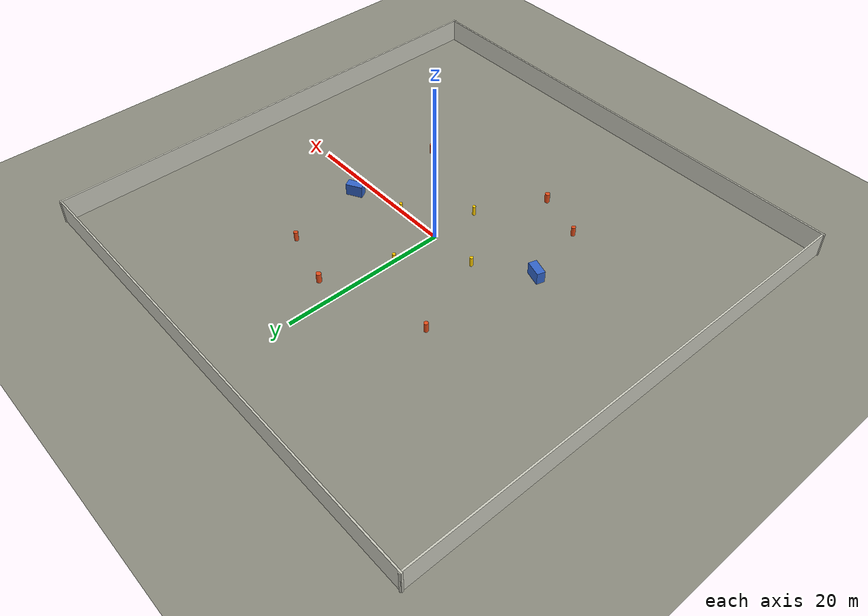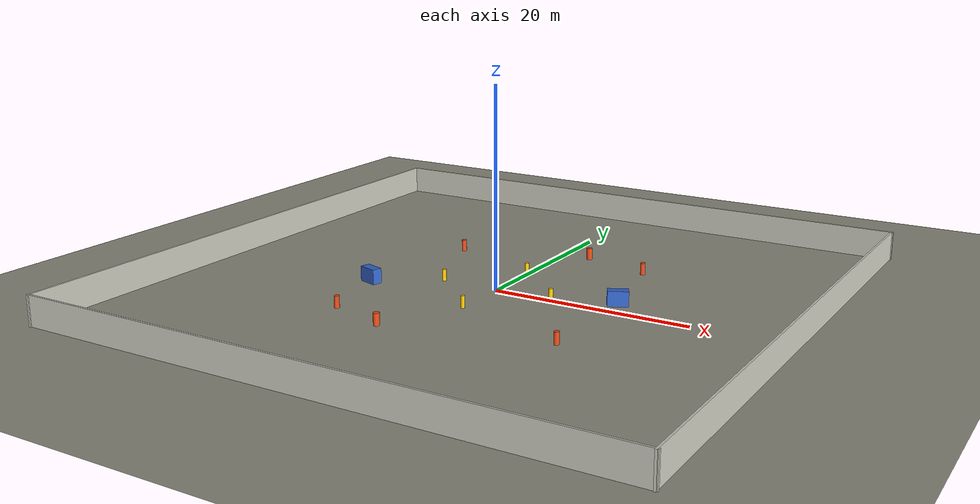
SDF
<?xml version="1.0" ?>

<sdf version='1.8'>
  <world name='open_field'>

    <!-- REQUIRED IGNITION SYSTEM PLUGINS -->
    <plugin filename="gz-sim-physics-system"
            name="gz::sim::systems::Physics"/>
    <plugin filename="gz-sim-user-commands-system"
            name="gz::sim::systems::UserCommands"/>
    <plugin filename="gz-sim-scene-broadcaster-system"
            name="gz::sim::systems::SceneBroadcaster"/>
    <!-- Sensors system required for lidar / IMU to publish -->
    <plugin filename="gz-sim-sensors-system"
            name="gz::sim::systems::Sensors">
      <render_engine>ogre2</render_engine>
    </plugin>
    <plugin filename="gz-sim-imu-system"
            name="gz::sim::systems::Imu"/>

    <!-- LIGHTING  (no cast_shadows → GPU-light)-->
    <light name='sun' type='directional'>
      <cast_shadows>0</cast_shadows>
      <pose>0 0 20 0 -0 0</pose>
      <diffuse>0.9 0.9 0.9 1</diffuse>
      <specular>0.3 0.3 0.3 1</specular>
      <attenuation>
        <range>1000</range>
        <constant>0.9</constant>
        <linear>0.01</linear>
        <quadratic>0.001</quadratic>
      </attenuation>
      <direction>-0.3 0.1 -0.9</direction>
    </light>

    <!-- PHYSICS  (1 kHz, RTF=1) -->
    <physics name='default_physics' default='0' type='ode'>
      <max_step_size>0.001</max_step_size>
      <real_time_factor>1</real_time_factor>
      <real_time_update_rate>1000</real_time_update_rate>
    </physics>

    <!-- GROUND  — 60 × 60 m paved surface -->
    <model name='ground_plane'>
      <static>1</static>
      <link name='link'>
        <collision name='collision'>
          <geometry>
            <plane>
              <normal>0 0 1</normal>
              <size>60 60</size>
            </plane>
          </geometry>
          <surface>
            <friction>
              <ode>
                <mu>100</mu>
                <mu2>50</mu2>
              </ode>
            </friction>
          </surface>
        </collision>
        <visual name='visual'>
          <cast_shadows>0</cast_shadows>
          <geometry>
            <plane>
              <normal>0 0 1</normal>
              <size>60 60</size>
            </plane>
          </geometry>
          <material>
            <ambient>0.55 0.55 0.50 1</ambient>
            <diffuse>0.55 0.55 0.50 1</diffuse>
            <specular>0.1 0.1 0.1 1</specular>
          </material>
        </visual>
      </link>
    </model>

    <model name='perimeter_walls'>
      <static>true</static>
      <pose>0 0 0 0 0 0</pose>

      <!-- South wall  y = -30 -->
      <link name='wall_south'>
        <pose>0 -30 1.5 0 0 0</pose>
        <collision name='col'>
          <geometry><box><size>60.4 0.2 3.0</size></box></geometry>
        </collision>
        <visual name='vis'>
          <geometry><box><size>60.4 0.2 3.0</size></box></geometry>
          <material><ambient>0.8 0.8 0.75 1</ambient><diffuse>0.8 0.8 0.75 1</diffuse></material>
        </visual>
      </link>

      <!-- North wall  y = +30 -->
      <link name='wall_north'>
        <pose>0 30 1.5 0 0 0</pose>
        <collision name='col'>
          <geometry><box><size>60.4 0.2 3.0</size></box></geometry>
        </collision>
        <visual name='vis'>
          <geometry><box><size>60.4 0.2 3.0</size></box></geometry>
          <material><ambient>0.8 0.8 0.75 1</ambient><diffuse>0.8 0.8 0.75 1</diffuse></material>
        </visual>
      </link>

      <!-- West wall  x = -30 -->
      <link name='wall_west'>
        <pose>-30 0 1.5 0 0 0</pose>
        <collision name='col'>
          <geometry><box><size>0.2 60.4 3.0</size></box></geometry>
        </collision>
        <visual name='vis'>
          <geometry><box><size>0.2 60.4 3.0</size></box></geometry>
          <material><ambient>0.8 0.8 0.75 1</ambient><diffuse>0.8 0.8 0.75 1</diffuse></material>
        </visual>
      </link>

      <!-- East wall  x = +30 -->
      <link name='wall_east'>
        <pose>30 0 1.5 0 0 0</pose>
        <collision name='col'>
          <geometry><box><size>0.2 60.4 3.0</size></box></geometry>
        </collision>
        <visual name='vis'>
          <geometry><box><size>0.2 60.4 3.0</size></box></geometry>
          <material><ambient>0.8 0.8 0.75 1</ambient><diffuse>0.8 0.8 0.75 1</diffuse></material>
        </visual>
      </link>
    </model>

    <!-- INNER RING 4 bollards at ±5-6 m -->
    <!-- North 6 m -->
    <model name='inner_north'>
      <static>true</static>
      <pose>0 6 0.6 0 0 0</pose>
      <link name='link'>
        <collision name='col'><geometry><cylinder><radius>0.2</radius><length>1.2</length></cylinder></geometry></collision>
        <visual name='vis'>
          <geometry><cylinder><radius>0.2</radius><length>1.2</length></cylinder></geometry>
          <material><ambient>1.0 0.8 0.0 1</ambient><diffuse>1.0 0.8 0.0 1</diffuse></material>
        </visual>
      </link>
    </model>

    <!-- South 6 m -->
    <model name='inner_south'>
      <static>true</static>
      <pose>0 -6 0.6 0 0 0</pose>
      <link name='link'>
        <collision name='col'><geometry><cylinder><radius>0.2</radius><length>1.2</length></cylinder></geometry></collision>
        <visual name='vis'>
          <geometry><cylinder><radius>0.2</radius><length>1.2</length></cylinder></geometry>
          <material><ambient>1.0 0.8 0.0 1</ambient><diffuse>1.0 0.8 0.0 1</diffuse></material>
        </visual>
      </link>
    </model>

    <!-- East 6 m -->
    <model name='inner_east'>
      <static>true</static>
      <pose>6 0 0.6 0 0 0</pose>
      <link name='link'>
        <collision name='col'><geometry><cylinder><radius>0.2</radius><length>1.2</length></cylinder></geometry></collision>
        <visual name='vis'>
          <geometry><cylinder><radius>0.2</radius><length>1.2</length></cylinder></geometry>
          <material><ambient>1.0 0.8 0.0 1</ambient><diffuse>1.0 0.8 0.0 1</diffuse></material>
        </visual>
      </link>
    </model>

    <!-- West 6 m -->
    <model name='inner_west'>
      <static>true</static>
      <pose>-6 0 0.6 0 0 0</pose>
      <link name='link'>
        <collision name='col'><geometry><cylinder><radius>0.2</radius><length>1.2</length></cylinder></geometry></collision>
        <visual name='vis'>
          <geometry><cylinder><radius>0.2</radius><length>1.2</length></cylinder></geometry>
          <material><ambient>1.0 0.8 0.0 1</ambient><diffuse>1.0 0.8 0.0 1</diffuse></material>
        </visual>
      </link>
    </model>

    <!-- OUTER RING 4 bollards at ±12-16 m -->
    <model name='bollard_a'>
      <static>true</static>
      <pose>10 12 0.6 0 0 0</pose>
      <link name='link'>
        <collision name='col'><geometry><cylinder><radius>0.25</radius><length>1.2</length></cylinder></geometry></collision>
        <visual name='vis'>
          <geometry><cylinder><radius>0.25</radius><length>1.2</length></cylinder></geometry>
          <material><ambient>0.9 0.3 0.1 1</ambient><diffuse>0.9 0.3 0.1 1</diffuse></material>
        </visual>
      </link>
    </model>

    <!-- Bollard B: NW — moved to 14 m -->
    <model name='bollard_b'>
      <static>true</static>
      <pose>-10 10 0.6 0 0 0</pose>
      <link name='link'>
        <collision name='col'><geometry><cylinder><radius>0.25</radius><length>1.2</length></cylinder></geometry></collision>
        <visual name='vis'>
          <geometry><cylinder><radius>0.25</radius><length>1.2</length></cylinder></geometry>
          <material><ambient>0.9 0.3 0.1 1</ambient><diffuse>0.9 0.3 0.1 1</diffuse></material>
        </visual>
      </link>
    </model>

    <!-- Bollard C: SE ~17.2 m — within range ✓ -->
    <model name='bollard_c'>
      <static>true</static>
      <pose>12 -10 0.6 0 0 0</pose>
      <link name='link'>
        <collision name='col'><geometry><cylinder><radius>0.25</radius><length>1.2</length></cylinder></geometry></collision>
        <visual name='vis'>
          <geometry><cylinder><radius>0.25</radius><length>1.2</length></cylinder></geometry>
          <material><ambient>0.9 0.3 0.1 1</ambient><diffuse>0.9 0.3 0.1 1</diffuse></material>
        </visual>
      </link>
    </model>

    <!-- Bollard D: SW ~17.2 m — within range ✓ -->
    <model name='bollard_d'>
      <static>true</static>
      <pose>-10 -12 0.6 0 0 0</pose>
      <link name='link'>
        <collision name='col'><geometry><cylinder><radius>0.25</radius><length>1.2</length></cylinder></geometry></collision>
        <visual name='vis'>
          <geometry><cylinder><radius>0.25</radius><length>1.2</length></cylinder></geometry>
          <material><ambient>0.9 0.3 0.1 1</ambient><diffuse>0.9 0.3 0.1 1</diffuse></material>
        </visual>
      </link>
    </model>

    <!-- Box E: moved to 12 m east (was 22 m — outside lidar) -->
    <model name='box_e'>
      <static>true</static>
      <pose>12 2 0.75 0 0 0.5</pose>
      <link name='link'>
        <collision name='col'><geometry><box><size>2.0 1.0 1.5</size></box></geometry></collision>
        <visual name='vis'>
          <geometry><box><size>2.0 1.0 1.5</size></box></geometry>
          <material><ambient>0.2 0.4 0.8 1</ambient><diffuse>0.2 0.4 0.8 1</diffuse></material>
        </visual>
      </link>
    </model>

    <!-- Box F: moved to 13 m west (was 20 m — outside lidar) -->
    <model name='box_f'>
      <static>true</static>
      <pose>-12 -4 0.75 0 0 -0.3</pose>
      <link name='link'>
        <collision name='col'><geometry><box><size>2.0 1.0 1.5</size></box></geometry></collision>
        <visual name='vis'>
          <geometry><box><size>2.0 1.0 1.5</size></box></geometry>
          <material><ambient>0.2 0.4 0.8 1</ambient><diffuse>0.2 0.4 0.8 1</diffuse></material>
        </visual>
      </link>
    </model>

    <!-- Bollard G: moved to 14 m north (was 22 m — outside lidar) -->
    <model name='bollard_g'>
      <static>true</static>
      <pose>3 14 0.6 0 0 0</pose>
      <link name='link'>
        <collision name='col'><geometry><cylinder><radius>0.3</radius><length>1.2</length></cylinder></geometry></collision>
        <visual name='vis'>
          <geometry><cylinder><radius>0.3</radius><length>1.2</length></cylinder></geometry>
          <material><ambient>0.9 0.3 0.1 1</ambient><diffuse>0.9 0.3 0.1 1</diffuse></material>
        </visual>
      </link>
    </model>

    <!-- Bollard H: moved to 14 m south (was 22 m — outside lidar) -->
    <model name='bollard_h'>
      <static>true</static>
      <pose>-4 -14 0.6 0 0 0</pose>
      <link name='link'>
        <collision name='col'><geometry><cylinder><radius>0.3</radius><length>1.2</length></cylinder></geometry></collision>
        <visual name='vis'>
          <geometry><cylinder><radius>0.3</radius><length>1.2</length></cylinder></geometry>
          <material><ambient>0.9 0.3 0.1 1</ambient><diffuse>0.9 0.3 0.1 1</diffuse></material>
        </visual>
      </link>
    </model>

    <!-- GUI CAMERA  — top-down view of the full 60×60 m field -->
    <gui fullscreen="0">
      <plugin filename="GzScene3D" name="3D View">
        <gz-gui>
          <title>3D View</title>
          <property type="bool" key="showTitleBar">false</property>
          <property type="string" key="state">docked</property>
        </gz-gui>
        <engine>ogre2</engine>
        <scene>scene</scene>
        <ambient_light>0.5 0.5 0.5</ambient_light>
        <background_color>0.4 0.6 0.9</background_color>
        <!-- Camera looking straight down from 80 m — shows entire 60×60 field -->
        <camera_pose>0 0 80 0 1.5707 0</camera_pose>
      </plugin>

      <plugin filename="WorldControl" name="World control">
        <gz-gui>
          <title>World control</title>
          <property type="bool" key="showTitleBar">false</property>
          <property type="bool" key="resizable">false</property>
          <property type="double" key="height">72</property>
          <property type="double" key="z">1</property>
          <property type="string" key="state">floating</property>
          <anchors target="3D View">
            <line own="left" target="left"/>
            <line own="bottom" target="bottom"/>
          </anchors>
        </gz-gui>
        <play_pause>true</play_pause>
        <step>true</step>
        <start_paused>false</start_paused>
      </plugin>

      <plugin filename="WorldStats" name="World stats">
        <gz-gui>
          <title>World stats</title>
          <property type="bool" key="showTitleBar">false</property>
          <property type="bool" key="resizable">false</property>
          <property type="double" key="height">110</property>
          <property type="double" key="width">290</property>
          <property type="double" key="z">1</property>
          <property type="string" key="state">floating</property>
          <anchors target="3D View">
            <line own="right" target="right"/>
            <line own="bottom" target="bottom"/>
          </anchors>
        </gz-gui>
        <sim_time>true</sim_time>
        <real_time>true</real_time>
        <real_time_factor>true</real_time_factor>
        <iterations>true</iterations>
      </plugin>
    </gui>

  </world>
</sdf>
